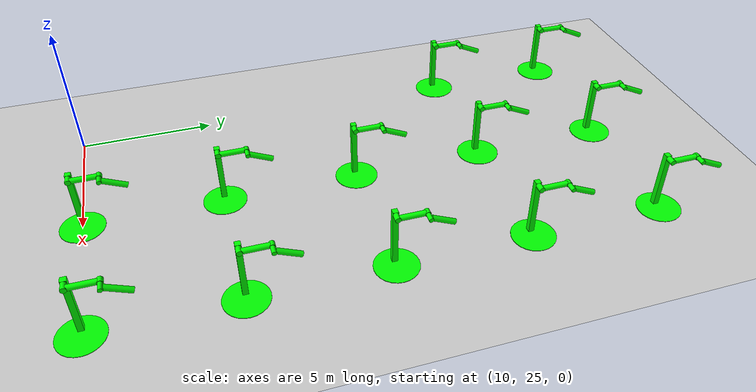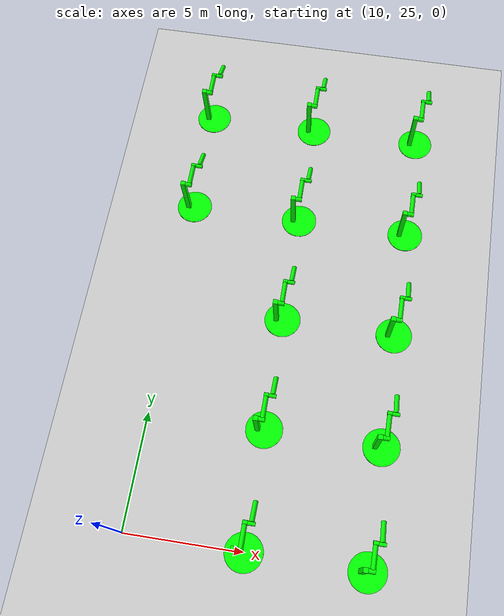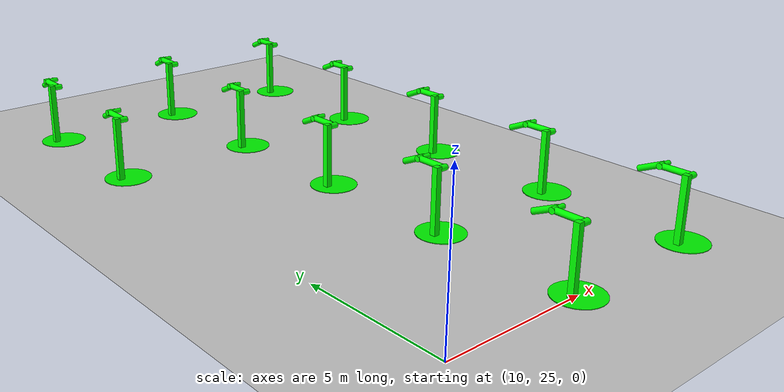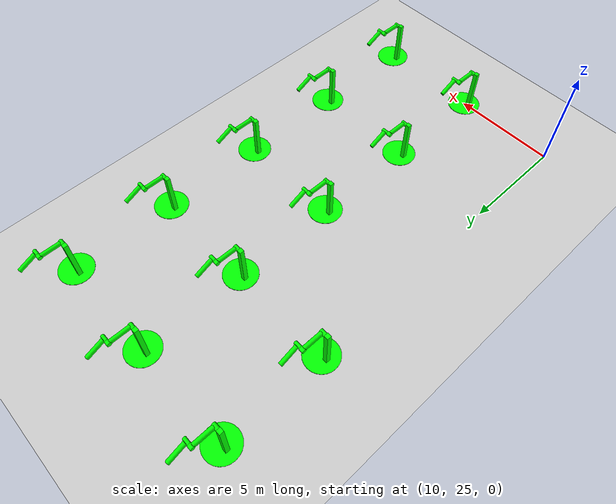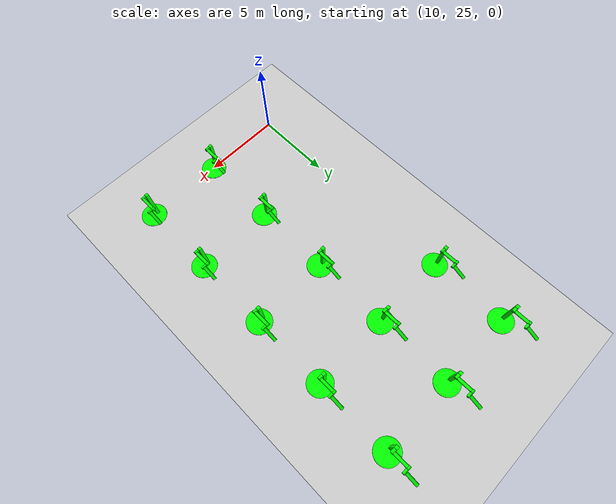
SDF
<sdf version="1.6">
 <world name="double_pendulums">
  <model name="ground_plane">
   <static>true</static>
   <link name="link">
    <collision name="collision">
     <geometry><plane><normal>0 0 1</normal><size>100 100</size></plane></geometry>
    </collision>
    <visual name="visual">
     <geometry><plane><normal>0 0 1</normal><size>100 100</size></plane></geometry>
     <material>
      <ambient>0.8 0.8 0.8 1</ambient>
      <diffuse>0.8 0.8 0.8 1</diffuse>
      <specular>0.8 0.8 0.8 1</specular>
     </material>
    </visual>
   </link>
  </model>
  <model name="dbl_pendulum_58">
   <pose>15 25 0 0 0 0</pose>
   <link name="base">
    <inertial><mass>100</mass></inertial>
    <visual name="vis_plate_on_ground">
     <pose>0 0 0.01 0 0 0</pose>
     <geometry><cylinder><radius>0.8</radius><length>0.02</length></cylinder></geometry>
     <material><ambient>0 1 0 1</ambient><diffuse>0 1 0 1</diffuse><specular>0 1 0 1</specular></material>
    </visual>
    <visual name="vis_pole">
     <pose>-0.275 0 1.1 0 0 0</pose>
     <geometry><box><size>0.2 0.2 2.2</size></box></geometry>
     <material><ambient>0 1 0 1</ambient><diffuse>0 1 0 1</diffuse><specular>0 1 0 1</specular></material>
    </visual>
    <collision name="col_plate_on_ground">
     <pose>0 0 0.01 0 0 0</pose>
     <geometry><cylinder><radius>0.8</radius><length>0.02</length></cylinder></geometry>
    </collision>
    <collision name="col_pole">
     <pose>-0.275 0 1.1 0 0 0</pose>
     <geometry><box><size>0.2 0.2 2.2</size></box></geometry>
    </collision>
   </link>
   <link name="upper_link">
    <pose>0 0 2.1 -1.5708 0 0</pose>
    <inertial><pose>0 0 0.5 0 0 0</pose></inertial>
    <visual name="vis_upper_joint">
     <pose>-0.05 0 0 0 1.5708 0</pose>
     <geometry><cylinder><radius>0.1</radius><length>0.3</length></cylinder></geometry>
     <material><ambient>0 1 0 1</ambient><diffuse>0 1 0 1</diffuse><specular>0 1 0 1</specular></material>
    </visual>
    <visual name="vis_lower_joint">
     <pose>0 0 1.0 0 1.5708 0</pose>
     <geometry><cylinder><radius>0.1</radius><length>0.2</length></cylinder></geometry>
     <material><ambient>0 1 0 1</ambient><diffuse>0 1 0 1</diffuse><specular>0 1 0 1</specular></material>
    </visual>
    <visual name="vis_cylinder">
     <pose>0 0 0.5 0 0 0</pose>
     <geometry><cylinder><radius>0.1</radius><length>0.9</length></cylinder></geometry>
     <material><ambient>0 1 0 1</ambient><diffuse>0 1 0 1</diffuse><specular>0 1 0 1</specular></material>
    </visual>
    <collision name="col_upper_joint">
     <pose>-0.05 0 0 0 1.5708 0</pose>
     <geometry><cylinder><radius>0.1</radius><length>0.3</length></cylinder></geometry>
    </collision>
    <collision name="col_lower_joint">
     <pose>0 0 1.0 0 1.5708 0</pose>
     <geometry><cylinder><radius>0.1</radius><length>0.2</length></cylinder></geometry>
    </collision>
    <collision name="col_cylinder">
     <pose>0 0 0.5 0 0 0</pose>
     <geometry><cylinder><radius>0.1</radius><length>0.9</length></cylinder></geometry>
    </collision>
   </link>
   <link name="lower_link">
    <pose>0.25 1.0 2.1 -2 0 0</pose>
    <inertial><pose>0 0 0.5 0 0 0</pose></inertial>
    <visual name="vis_lower_joint">
     <pose>0 0 0 0 1.5708 0</pose>
     <geometry><cylinder><radius>0.08</radius><length>0.3</length></cylinder></geometry>
     <material><ambient>0 1 0 1</ambient><diffuse>0 1 0 1</diffuse><specular>0 1 0 1</specular></material>
    </visual>
    <visual name="vis_cylinder">
     <pose>0 0 0.5 0 0 0</pose>
     <geometry><cylinder><radius>0.1</radius><length>0.9</length></cylinder></geometry>
     <material><ambient>0 1 0 1</ambient><diffuse>0 1 0 1</diffuse><specular>0 1 0 1</specular></material>
    </visual>
    <collision name="col_lower_joint">
     <pose>0 0 0 0 1.5708 0</pose>
     <geometry><cylinder><radius>0.08</radius><length>0.3</length></cylinder></geometry>
    </collision>
    <collision name="col_cylinder">
     <pose>0 0 0.5 0 0 0</pose>
     <geometry><cylinder><radius>0.1</radius><length>0.9</length></cylinder></geometry>
    </collision>
   </link>
   <joint name="upper_joint" type="revolute">
    <parent>base</parent>
    <child>upper_link</child>
    <axis><xyz>1.0 0 0</xyz></axis>
   </joint>
   <joint name="lower_joint" type="revolute">
    <parent>upper_link</parent>
    <child>lower_link</child>
    <axis><xyz>1.0 0 0</xyz></axis>
   </joint>
  </model>
  <model name="dbl_pendulum_59">
   <pose>20 25 0 0 0 0</pose>
   <link name="base">
    <inertial><mass>100</mass></inertial>
    <visual name="vis_plate_on_ground">
     <pose>0 0 0.01 0 0 0</pose>
     <geometry><cylinder><radius>0.8</radius><length>0.02</length></cylinder></geometry>
     <material><ambient>0 1 0 1</ambient><diffuse>0 1 0 1</diffuse><specular>0 1 0 1</specular></material>
    </visual>
    <visual name="vis_pole">
     <pose>-0.275 0 1.1 0 0 0</pose>
     <geometry><box><size>0.2 0.2 2.2</size></box></geometry>
     <material><ambient>0 1 0 1</ambient><diffuse>0 1 0 1</diffuse><specular>0 1 0 1</specular></material>
    </visual>
    <collision name="col_plate_on_ground">
     <pose>0 0 0.01 0 0 0</pose>
     <geometry><cylinder><radius>0.8</radius><length>0.02</length></cylinder></geometry>
    </collision>
    <collision name="col_pole">
     <pose>-0.275 0 1.1 0 0 0</pose>
     <geometry><box><size>0.2 0.2 2.2</size></box></geometry>
    </collision>
   </link>
   <link name="upper_link">
    <pose>0 0 2.1 -1.5708 0 0</pose>
    <inertial><pose>0 0 0.5 0 0 0</pose></inertial>
    <visual name="vis_upper_joint">
     <pose>-0.05 0 0 0 1.5708 0</pose>
     <geometry><cylinder><radius>0.1</radius><length>0.3</length></cylinder></geometry>
     <material><ambient>0 1 0 1</ambient><diffuse>0 1 0 1</diffuse><specular>0 1 0 1</specular></material>
    </visual>
    <visual name="vis_lower_joint">
     <pose>0 0 1.0 0 1.5708 0</pose>
     <geometry><cylinder><radius>0.1</radius><length>0.2</length></cylinder></geometry>
     <material><ambient>0 1 0 1</ambient><diffuse>0 1 0 1</diffuse><specular>0 1 0 1</specular></material>
    </visual>
    <visual name="vis_cylinder">
     <pose>0 0 0.5 0 0 0</pose>
     <geometry><cylinder><radius>0.1</radius><length>0.9</length></cylinder></geometry>
     <material><ambient>0 1 0 1</ambient><diffuse>0 1 0 1</diffuse><specular>0 1 0 1</specular></material>
    </visual>
    <collision name="col_upper_joint">
     <pose>-0.05 0 0 0 1.5708 0</pose>
     <geometry><cylinder><radius>0.1</radius><length>0.3</length></cylinder></geometry>
    </collision>
    <collision name="col_lower_joint">
     <pose>0 0 1.0 0 1.5708 0</pose>
     <geometry><cylinder><radius>0.1</radius><length>0.2</length></cylinder></geometry>
    </collision>
    <collision name="col_cylinder">
     <pose>0 0 0.5 0 0 0</pose>
     <geometry><cylinder><radius>0.1</radius><length>0.9</length></cylinder></geometry>
    </collision>
   </link>
   <link name="lower_link">
    <pose>0.25 1.0 2.1 -2 0 0</pose>
    <inertial><pose>0 0 0.5 0 0 0</pose></inertial>
    <visual name="vis_lower_joint">
     <pose>0 0 0 0 1.5708 0</pose>
     <geometry><cylinder><radius>0.08</radius><length>0.3</length></cylinder></geometry>
     <material><ambient>0 1 0 1</ambient><diffuse>0 1 0 1</diffuse><specular>0 1 0 1</specular></material>
    </visual>
    <visual name="vis_cylinder">
     <pose>0 0 0.5 0 0 0</pose>
     <geometry><cylinder><radius>0.1</radius><length>0.9</length></cylinder></geometry>
     <material><ambient>0 1 0 1</ambient><diffuse>0 1 0 1</diffuse><specular>0 1 0 1</specular></material>
    </visual>
    <collision name="col_lower_joint">
     <pose>0 0 0 0 1.5708 0</pose>
     <geometry><cylinder><radius>0.08</radius><length>0.3</length></cylinder></geometry>
    </collision>
    <collision name="col_cylinder">
     <pose>0 0 0.5 0 0 0</pose>
     <geometry><cylinder><radius>0.1</radius><length>0.9</length></cylinder></geometry>
    </collision>
   </link>
   <joint name="upper_joint" type="revolute">
    <parent>base</parent>
    <child>upper_link</child>
    <axis><xyz>1.0 0 0</xyz></axis>
   </joint>
   <joint name="lower_joint" type="revolute">
    <parent>upper_link</parent>
    <child>lower_link</child>
    <axis><xyz>1.0 0 0</xyz></axis>
   </joint>
  </model>
  <model name="dbl_pendulum_68">
   <pose>15 30 0 0 0 0</pose>
   <link name="base">
    <inertial><mass>100</mass></inertial>
    <visual name="vis_plate_on_ground">
     <pose>0 0 0.01 0 0 0</pose>
     <geometry><cylinder><radius>0.8</radius><length>0.02</length></cylinder></geometry>
     <material><ambient>0 1 0 1</ambient><diffuse>0 1 0 1</diffuse><specular>0 1 0 1</specular></material>
    </visual>
    <visual name="vis_pole">
     <pose>-0.275 0 1.1 0 0 0</pose>
     <geometry><box><size>0.2 0.2 2.2</size></box></geometry>
     <material><ambient>0 1 0 1</ambient><diffuse>0 1 0 1</diffuse><specular>0 1 0 1</specular></material>
    </visual>
    <collision name="col_plate_on_ground">
     <pose>0 0 0.01 0 0 0</pose>
     <geometry><cylinder><radius>0.8</radius><length>0.02</length></cylinder></geometry>
    </collision>
    <collision name="col_pole">
     <pose>-0.275 0 1.1 0 0 0</pose>
     <geometry><box><size>0.2 0.2 2.2</size></box></geometry>
    </collision>
   </link>
   <link name="upper_link">
    <pose>0 0 2.1 -1.5708 0 0</pose>
    <inertial><pose>0 0 0.5 0 0 0</pose></inertial>
    <visual name="vis_upper_joint">
     <pose>-0.05 0 0 0 1.5708 0</pose>
     <geometry><cylinder><radius>0.1</radius><length>0.3</length></cylinder></geometry>
     <material><ambient>0 1 0 1</ambient><diffuse>0 1 0 1</diffuse><specular>0 1 0 1</specular></material>
    </visual>
    <visual name="vis_lower_joint">
     <pose>0 0 1.0 0 1.5708 0</pose>
     <geometry><cylinder><radius>0.1</radius><length>0.2</length></cylinder></geometry>
     <material><ambient>0 1 0 1</ambient><diffuse>0 1 0 1</diffuse><specular>0 1 0 1</specular></material>
    </visual>
    <visual name="vis_cylinder">
     <pose>0 0 0.5 0 0 0</pose>
     <geometry><cylinder><radius>0.1</radius><length>0.9</length></cylinder></geometry>
     <material><ambient>0 1 0 1</ambient><diffuse>0 1 0 1</diffuse><specular>0 1 0 1</specular></material>
    </visual>
    <collision name="col_upper_joint">
     <pose>-0.05 0 0 0 1.5708 0</pose>
     <geometry><cylinder><radius>0.1</radius><length>0.3</length></cylinder></geometry>
    </collision>
    <collision name="col_lower_joint">
     <pose>0 0 1.0 0 1.5708 0</pose>
     <geometry><cylinder><radius>0.1</radius><length>0.2</length></cylinder></geometry>
    </collision>
    <collision name="col_cylinder">
     <pose>0 0 0.5 0 0 0</pose>
     <geometry><cylinder><radius>0.1</radius><length>0.9</length></cylinder></geometry>
    </collision>
   </link>
   <link name="lower_link">
    <pose>0.25 1.0 2.1 -2 0 0</pose>
    <inertial><pose>0 0 0.5 0 0 0</pose></inertial>
    <visual name="vis_lower_joint">
     <pose>0 0 0 0 1.5708 0</pose>
     <geometry><cylinder><radius>0.08</radius><length>0.3</length></cylinder></geometry>
     <material><ambient>0 1 0 1</ambient><diffuse>0 1 0 1</diffuse><specular>0 1 0 1</specular></material>
    </visual>
    <visual name="vis_cylinder">
     <pose>0 0 0.5 0 0 0</pose>
     <geometry><cylinder><radius>0.1</radius><length>0.9</length></cylinder></geometry>
     <material><ambient>0 1 0 1</ambient><diffuse>0 1 0 1</diffuse><specular>0 1 0 1</specular></material>
    </visual>
    <collision name="col_lower_joint">
     <pose>0 0 0 0 1.5708 0</pose>
     <geometry><cylinder><radius>0.08</radius><length>0.3</length></cylinder></geometry>
    </collision>
    <collision name="col_cylinder">
     <pose>0 0 0.5 0 0 0</pose>
     <geometry><cylinder><radius>0.1</radius><length>0.9</length></cylinder></geometry>
    </collision>
   </link>
   <joint name="upper_joint" type="revolute">
    <parent>base</parent>
    <child>upper_link</child>
    <axis><xyz>1.0 0 0</xyz></axis>
   </joint>
   <joint name="lower_joint" type="revolute">
    <parent>upper_link</parent>
    <child>lower_link</child>
    <axis><xyz>1.0 0 0</xyz></axis>
   </joint>
  </model>
  <model name="dbl_pendulum_69">
   <pose>20 30 0 0 0 0</pose>
   <link name="base">
    <inertial><mass>100</mass></inertial>
    <visual name="vis_plate_on_ground">
     <pose>0 0 0.01 0 0 0</pose>
     <geometry><cylinder><radius>0.8</radius><length>0.02</length></cylinder></geometry>
     <material><ambient>0 1 0 1</ambient><diffuse>0 1 0 1</diffuse><specular>0 1 0 1</specular></material>
    </visual>
    <visual name="vis_pole">
     <pose>-0.275 0 1.1 0 0 0</pose>
     <geometry><box><size>0.2 0.2 2.2</size></box></geometry>
     <material><ambient>0 1 0 1</ambient><diffuse>0 1 0 1</diffuse><specular>0 1 0 1</specular></material>
    </visual>
    <collision name="col_plate_on_ground">
     <pose>0 0 0.01 0 0 0</pose>
     <geometry><cylinder><radius>0.8</radius><length>0.02</length></cylinder></geometry>
    </collision>
    <collision name="col_pole">
     <pose>-0.275 0 1.1 0 0 0</pose>
     <geometry><box><size>0.2 0.2 2.2</size></box></geometry>
    </collision>
   </link>
   <link name="upper_link">
    <pose>0 0 2.1 -1.5708 0 0</pose>
    <inertial><pose>0 0 0.5 0 0 0</pose></inertial>
    <visual name="vis_upper_joint">
     <pose>-0.05 0 0 0 1.5708 0</pose>
     <geometry><cylinder><radius>0.1</radius><length>0.3</length></cylinder></geometry>
     <material><ambient>0 1 0 1</ambient><diffuse>0 1 0 1</diffuse><specular>0 1 0 1</specular></material>
    </visual>
    <visual name="vis_lower_joint">
     <pose>0 0 1.0 0 1.5708 0</pose>
     <geometry><cylinder><radius>0.1</radius><length>0.2</length></cylinder></geometry>
     <material><ambient>0 1 0 1</ambient><diffuse>0 1 0 1</diffuse><specular>0 1 0 1</specular></material>
    </visual>
    <visual name="vis_cylinder">
     <pose>0 0 0.5 0 0 0</pose>
     <geometry><cylinder><radius>0.1</radius><length>0.9</length></cylinder></geometry>
     <material><ambient>0 1 0 1</ambient><diffuse>0 1 0 1</diffuse><specular>0 1 0 1</specular></material>
    </visual>
    <collision name="col_upper_joint">
     <pose>-0.05 0 0 0 1.5708 0</pose>
     <geometry><cylinder><radius>0.1</radius><length>0.3</length></cylinder></geometry>
    </collision>
    <collision name="col_lower_joint">
     <pose>0 0 1.0 0 1.5708 0</pose>
     <geometry><cylinder><radius>0.1</radius><length>0.2</length></cylinder></geometry>
    </collision>
    <collision name="col_cylinder">
     <pose>0 0 0.5 0 0 0</pose>
     <geometry><cylinder><radius>0.1</radius><length>0.9</length></cylinder></geometry>
    </collision>
   </link>
   <link name="lower_link">
    <pose>0.25 1.0 2.1 -2 0 0</pose>
    <inertial><pose>0 0 0.5 0 0 0</pose></inertial>
    <visual name="vis_lower_joint">
     <pose>0 0 0 0 1.5708 0</pose>
     <geometry><cylinder><radius>0.08</radius><length>0.3</length></cylinder></geometry>
     <material><ambient>0 1 0 1</ambient><diffuse>0 1 0 1</diffuse><specular>0 1 0 1</specular></material>
    </visual>
    <visual name="vis_cylinder">
     <pose>0 0 0.5 0 0 0</pose>
     <geometry><cylinder><radius>0.1</radius><length>0.9</length></cylinder></geometry>
     <material><ambient>0 1 0 1</ambient><diffuse>0 1 0 1</diffuse><specular>0 1 0 1</specular></material>
    </visual>
    <collision name="col_lower_joint">
     <pose>0 0 0 0 1.5708 0</pose>
     <geometry><cylinder><radius>0.08</radius><length>0.3</length></cylinder></geometry>
    </collision>
    <collision name="col_cylinder">
     <pose>0 0 0.5 0 0 0</pose>
     <geometry><cylinder><radius>0.1</radius><length>0.9</length></cylinder></geometry>
    </collision>
   </link>
   <joint name="upper_joint" type="revolute">
    <parent>base</parent>
    <child>upper_link</child>
    <axis><xyz>1.0 0 0</xyz></axis>
   </joint>
   <joint name="lower_joint" type="revolute">
    <parent>upper_link</parent>
    <child>lower_link</child>
    <axis><xyz>1.0 0 0</xyz></axis>
   </joint>
  </model>
  <model name="dbl_pendulum_78">
   <pose>15 35 0 0 0 0</pose>
   <link name="base">
    <inertial><mass>100</mass></inertial>
    <visual name="vis_plate_on_ground">
     <pose>0 0 0.01 0 0 0</pose>
     <geometry><cylinder><radius>0.8</radius><length>0.02</length></cylinder></geometry>
     <material><ambient>0 1 0 1</ambient><diffuse>0 1 0 1</diffuse><specular>0 1 0 1</specular></material>
    </visual>
    <visual name="vis_pole">
     <pose>-0.275 0 1.1 0 0 0</pose>
     <geometry><box><size>0.2 0.2 2.2</size></box></geometry>
     <material><ambient>0 1 0 1</ambient><diffuse>0 1 0 1</diffuse><specular>0 1 0 1</specular></material>
    </visual>
    <collision name="col_plate_on_ground">
     <pose>0 0 0.01 0 0 0</pose>
     <geometry><cylinder><radius>0.8</radius><length>0.02</length></cylinder></geometry>
    </collision>
    <collision name="col_pole">
     <pose>-0.275 0 1.1 0 0 0</pose>
     <geometry><box><size>0.2 0.2 2.2</size></box></geometry>
    </collision>
   </link>
   <link name="upper_link">
    <pose>0 0 2.1 -1.5708 0 0</pose>
    <inertial><pose>0 0 0.5 0 0 0</pose></inertial>
    <visual name="vis_upper_joint">
     <pose>-0.05 0 0 0 1.5708 0</pose>
     <geometry><cylinder><radius>0.1</radius><length>0.3</length></cylinder></geometry>
     <material><ambient>0 1 0 1</ambient><diffuse>0 1 0 1</diffuse><specular>0 1 0 1</specular></material>
    </visual>
    <visual name="vis_lower_joint">
     <pose>0 0 1.0 0 1.5708 0</pose>
     <geometry><cylinder><radius>0.1</radius><length>0.2</length></cylinder></geometry>
     <material><ambient>0 1 0 1</ambient><diffuse>0 1 0 1</diffuse><specular>0 1 0 1</specular></material>
    </visual>
    <visual name="vis_cylinder">
     <pose>0 0 0.5 0 0 0</pose>
     <geometry><cylinder><radius>0.1</radius><length>0.9</length></cylinder></geometry>
     <material><ambient>0 1 0 1</ambient><diffuse>0 1 0 1</diffuse><specular>0 1 0 1</specular></material>
    </visual>
    <collision name="col_upper_joint">
     <pose>-0.05 0 0 0 1.5708 0</pose>
     <geometry><cylinder><radius>0.1</radius><length>0.3</length></cylinder></geometry>
    </collision>
    <collision name="col_lower_joint">
     <pose>0 0 1.0 0 1.5708 0</pose>
     <geometry><cylinder><radius>0.1</radius><length>0.2</length></cylinder></geometry>
    </collision>
    <collision name="col_cylinder">
     <pose>0 0 0.5 0 0 0</pose>
     <geometry><cylinder><radius>0.1</radius><length>0.9</length></cylinder></geometry>
    </collision>
   </link>
   <link name="lower_link">
    <pose>0.25 1.0 2.1 -2 0 0</pose>
    <inertial><pose>0 0 0.5 0 0 0</pose></inertial>
    <visual name="vis_lower_joint">
     <pose>0 0 0 0 1.5708 0</pose>
     <geometry><cylinder><radius>0.08</radius><length>0.3</length></cylinder></geometry>
     <material><ambient>0 1 0 1</ambient><diffuse>0 1 0 1</diffuse><specular>0 1 0 1</specular></material>
    </visual>
    <visual name="vis_cylinder">
     <pose>0 0 0.5 0 0 0</pose>
     <geometry><cylinder><radius>0.1</radius><length>0.9</length></cylinder></geometry>
     <material><ambient>0 1 0 1</ambient><diffuse>0 1 0 1</diffuse><specular>0 1 0 1</specular></material>
    </visual>
    <collision name="col_lower_joint">
     <pose>0 0 0 0 1.5708 0</pose>
     <geometry><cylinder><radius>0.08</radius><length>0.3</length></cylinder></geometry>
    </collision>
    <collision name="col_cylinder">
     <pose>0 0 0.5 0 0 0</pose>
     <geometry><cylinder><radius>0.1</radius><length>0.9</length></cylinder></geometry>
    </collision>
   </link>
   <joint name="upper_joint" type="revolute">
    <parent>base</parent>
    <child>upper_link</child>
    <axis><xyz>1.0 0 0</xyz></axis>
   </joint>
   <joint name="lower_joint" type="revolute">
    <parent>upper_link</parent>
    <child>lower_link</child>
    <axis><xyz>1.0 0 0</xyz></axis>
   </joint>
  </model>
  <model name="dbl_pendulum_79">
   <pose>20 35 0 0 0 0</pose>
   <link name="base">
    <inertial><mass>100</mass></inertial>
    <visual name="vis_plate_on_ground">
     <pose>0 0 0.01 0 0 0</pose>
     <geometry><cylinder><radius>0.8</radius><length>0.02</length></cylinder></geometry>
     <material><ambient>0 1 0 1</ambient><diffuse>0 1 0 1</diffuse><specular>0 1 0 1</specular></material>
    </visual>
    <visual name="vis_pole">
     <pose>-0.275 0 1.1 0 0 0</pose>
     <geometry><box><size>0.2 0.2 2.2</size></box></geometry>
     <material><ambient>0 1 0 1</ambient><diffuse>0 1 0 1</diffuse><specular>0 1 0 1</specular></material>
    </visual>
    <collision name="col_plate_on_ground">
     <pose>0 0 0.01 0 0 0</pose>
     <geometry><cylinder><radius>0.8</radius><length>0.02</length></cylinder></geometry>
    </collision>
    <collision name="col_pole">
     <pose>-0.275 0 1.1 0 0 0</pose>
     <geometry><box><size>0.2 0.2 2.2</size></box></geometry>
    </collision>
   </link>
   <link name="upper_link">
    <pose>0 0 2.1 -1.5708 0 0</pose>
    <inertial><pose>0 0 0.5 0 0 0</pose></inertial>
    <visual name="vis_upper_joint">
     <pose>-0.05 0 0 0 1.5708 0</pose>
     <geometry><cylinder><radius>0.1</radius><length>0.3</length></cylinder></geometry>
     <material><ambient>0 1 0 1</ambient><diffuse>0 1 0 1</diffuse><specular>0 1 0 1</specular></material>
    </visual>
    <visual name="vis_lower_joint">
     <pose>0 0 1.0 0 1.5708 0</pose>
     <geometry><cylinder><radius>0.1</radius><length>0.2</length></cylinder></geometry>
     <material><ambient>0 1 0 1</ambient><diffuse>0 1 0 1</diffuse><specular>0 1 0 1</specular></material>
    </visual>
    <visual name="vis_cylinder">
     <pose>0 0 0.5 0 0 0</pose>
     <geometry><cylinder><radius>0.1</radius><length>0.9</length></cylinder></geometry>
     <material><ambient>0 1 0 1</ambient><diffuse>0 1 0 1</diffuse><specular>0 1 0 1</specular></material>
    </visual>
    <collision name="col_upper_joint">
     <pose>-0.05 0 0 0 1.5708 0</pose>
     <geometry><cylinder><radius>0.1</radius><length>0.3</length></cylinder></geometry>
    </collision>
    <collision name="col_lower_joint">
     <pose>0 0 1.0 0 1.5708 0</pose>
     <geometry><cylinder><radius>0.1</radius><length>0.2</length></cylinder></geometry>
    </collision>
    <collision name="col_cylinder">
     <pose>0 0 0.5 0 0 0</pose>
     <geometry><cylinder><radius>0.1</radius><length>0.9</length></cylinder></geometry>
    </collision>
   </link>
   <link name="lower_link">
    <pose>0.25 1.0 2.1 -2 0 0</pose>
    <inertial><pose>0 0 0.5 0 0 0</pose></inertial>
    <visual name="vis_lower_joint">
     <pose>0 0 0 0 1.5708 0</pose>
     <geometry><cylinder><radius>0.08</radius><length>0.3</length></cylinder></geometry>
     <material><ambient>0 1 0 1</ambient><diffuse>0 1 0 1</diffuse><specular>0 1 0 1</specular></material>
    </visual>
    <visual name="vis_cylinder">
     <pose>0 0 0.5 0 0 0</pose>
     <geometry><cylinder><radius>0.1</radius><length>0.9</length></cylinder></geometry>
     <material><ambient>0 1 0 1</ambient><diffuse>0 1 0 1</diffuse><specular>0 1 0 1</specular></material>
    </visual>
    <collision name="col_lower_joint">
     <pose>0 0 0 0 1.5708 0</pose>
     <geometry><cylinder><radius>0.08</radius><length>0.3</length></cylinder></geometry>
    </collision>
    <collision name="col_cylinder">
     <pose>0 0 0.5 0 0 0</pose>
     <geometry><cylinder><radius>0.1</radius><length>0.9</length></cylinder></geometry>
    </collision>
   </link>
   <joint name="upper_joint" type="revolute">
    <parent>base</parent>
    <child>upper_link</child>
    <axis><xyz>1.0 0 0</xyz></axis>
   </joint>
   <joint name="lower_joint" type="revolute">
    <parent>upper_link</parent>
    <child>lower_link</child>
    <axis><xyz>1.0 0 0</xyz></axis>
   </joint>
  </model>
  <model name="dbl_pendulum_87">
   <pose>10 40 0 0 0 0</pose>
   <link name="base">
    <inertial><mass>100</mass></inertial>
    <visual name="vis_plate_on_ground">
     <pose>0 0 0.01 0 0 0</pose>
     <geometry><cylinder><radius>0.8</radius><length>0.02</length></cylinder></geometry>
     <material><ambient>0 1 0 1</ambient><diffuse>0 1 0 1</diffuse><specular>0 1 0 1</specular></material>
    </visual>
    <visual name="vis_pole">
     <pose>-0.275 0 1.1 0 0 0</pose>
     <geometry><box><size>0.2 0.2 2.2</size></box></geometry>
     <material><ambient>0 1 0 1</ambient><diffuse>0 1 0 1</diffuse><specular>0 1 0 1</specular></material>
    </visual>
    <collision name="col_plate_on_ground">
     <pose>0 0 0.01 0 0 0</pose>
     <geometry><cylinder><radius>0.8</radius><length>0.02</length></cylinder></geometry>
    </collision>
    <collision name="col_pole">
     <pose>-0.275 0 1.1 0 0 0</pose>
     <geometry><box><size>0.2 0.2 2.2</size></box></geometry>
    </collision>
   </link>
   <link name="upper_link">
    <pose>0 0 2.1 -1.5708 0 0</pose>
    <inertial><pose>0 0 0.5 0 0 0</pose></inertial>
    <visual name="vis_upper_joint">
     <pose>-0.05 0 0 0 1.5708 0</pose>
     <geometry><cylinder><radius>0.1</radius><length>0.3</length></cylinder></geometry>
     <material><ambient>0 1 0 1</ambient><diffuse>0 1 0 1</diffuse><specular>0 1 0 1</specular></material>
    </visual>
    <visual name="vis_lower_joint">
     <pose>0 0 1.0 0 1.5708 0</pose>
     <geometry><cylinder><radius>0.1</radius><length>0.2</length></cylinder></geometry>
     <material><ambient>0 1 0 1</ambient><diffuse>0 1 0 1</diffuse><specular>0 1 0 1</specular></material>
    </visual>
    <visual name="vis_cylinder">
     <pose>0 0 0.5 0 0 0</pose>
     <geometry><cylinder><radius>0.1</radius><length>0.9</length></cylinder></geometry>
     <material><ambient>0 1 0 1</ambient><diffuse>0 1 0 1</diffuse><specular>0 1 0 1</specular></material>
    </visual>
    <collision name="col_upper_joint">
     <pose>-0.05 0 0 0 1.5708 0</pose>
     <geometry><cylinder><radius>0.1</radius><length>0.3</length></cylinder></geometry>
    </collision>
    <collision name="col_lower_joint">
     <pose>0 0 1.0 0 1.5708 0</pose>
     <geometry><cylinder><radius>0.1</radius><length>0.2</length></cylinder></geometry>
    </collision>
    <collision name="col_cylinder">
     <pose>0 0 0.5 0 0 0</pose>
     <geometry><cylinder><radius>0.1</radius><length>0.9</length></cylinder></geometry>
    </collision>
   </link>
   <link name="lower_link">
    <pose>0.25 1.0 2.1 -2 0 0</pose>
    <inertial><pose>0 0 0.5 0 0 0</pose></inertial>
    <visual name="vis_lower_joint">
     <pose>0 0 0 0 1.5708 0</pose>
     <geometry><cylinder><radius>0.08</radius><length>0.3</length></cylinder></geometry>
     <material><ambient>0 1 0 1</ambient><diffuse>0 1 0 1</diffuse><specular>0 1 0 1</specular></material>
    </visual>
    <visual name="vis_cylinder">
     <pose>0 0 0.5 0 0 0</pose>
     <geometry><cylinder><radius>0.1</radius><length>0.9</length></cylinder></geometry>
     <material><ambient>0 1 0 1</ambient><diffuse>0 1 0 1</diffuse><specular>0 1 0 1</specular></material>
    </visual>
    <collision name="col_lower_joint">
     <pose>0 0 0 0 1.5708 0</pose>
     <geometry><cylinder><radius>0.08</radius><length>0.3</length></cylinder></geometry>
    </collision>
    <collision name="col_cylinder">
     <pose>0 0 0.5 0 0 0</pose>
     <geometry><cylinder><radius>0.1</radius><length>0.9</length></cylinder></geometry>
    </collision>
   </link>
   <joint name="upper_joint" type="revolute">
    <parent>base</parent>
    <child>upper_link</child>
    <axis><xyz>1.0 0 0</xyz></axis>
   </joint>
   <joint name="lower_joint" type="revolute">
    <parent>upper_link</parent>
    <child>lower_link</child>
    <axis><xyz>1.0 0 0</xyz></axis>
   </joint>
  </model>
  <model name="dbl_pendulum_88">
   <pose>15 40 0 0 0 0</pose>
   <link name="base">
    <inertial><mass>100</mass></inertial>
    <visual name="vis_plate_on_ground">
     <pose>0 0 0.01 0 0 0</pose>
     <geometry><cylinder><radius>0.8</radius><length>0.02</length></cylinder></geometry>
     <material><ambient>0 1 0 1</ambient><diffuse>0 1 0 1</diffuse><specular>0 1 0 1</specular></material>
    </visual>
    <visual name="vis_pole">
     <pose>-0.275 0 1.1 0 0 0</pose>
     <geometry><box><size>0.2 0.2 2.2</size></box></geometry>
     <material><ambient>0 1 0 1</ambient><diffuse>0 1 0 1</diffuse><specular>0 1 0 1</specular></material>
    </visual>
    <collision name="col_plate_on_ground">
     <pose>0 0 0.01 0 0 0</pose>
     <geometry><cylinder><radius>0.8</radius><length>0.02</length></cylinder></geometry>
    </collision>
    <collision name="col_pole">
     <pose>-0.275 0 1.1 0 0 0</pose>
     <geometry><box><size>0.2 0.2 2.2</size></box></geometry>
    </collision>
   </link>
   <link name="upper_link">
    <pose>0 0 2.1 -1.5708 0 0</pose>
    <inertial><pose>0 0 0.5 0 0 0</pose></inertial>
    <visual name="vis_upper_joint">
     <pose>-0.05 0 0 0 1.5708 0</pose>
     <geometry><cylinder><radius>0.1</radius><length>0.3</length></cylinder></geometry>
     <material><ambient>0 1 0 1</ambient><diffuse>0 1 0 1</diffuse><specular>0 1 0 1</specular></material>
    </visual>
    <visual name="vis_lower_joint">
     <pose>0 0 1.0 0 1.5708 0</pose>
     <geometry><cylinder><radius>0.1</radius><length>0.2</length></cylinder></geometry>
     <material><ambient>0 1 0 1</ambient><diffuse>0 1 0 1</diffuse><specular>0 1 0 1</specular></material>
    </visual>
    <visual name="vis_cylinder">
     <pose>0 0 0.5 0 0 0</pose>
     <geometry><cylinder><radius>0.1</radius><length>0.9</length></cylinder></geometry>
     <material><ambient>0 1 0 1</ambient><diffuse>0 1 0 1</diffuse><specular>0 1 0 1</specular></material>
    </visual>
    <collision name="col_upper_joint">
     <pose>-0.05 0 0 0 1.5708 0</pose>
     <geometry><cylinder><radius>0.1</radius><length>0.3</length></cylinder></geometry>
    </collision>
    <collision name="col_lower_joint">
     <pose>0 0 1.0 0 1.5708 0</pose>
     <geometry><cylinder><radius>0.1</radius><length>0.2</length></cylinder></geometry>
    </collision>
    <collision name="col_cylinder">
     <pose>0 0 0.5 0 0 0</pose>
     <geometry><cylinder><radius>0.1</radius><length>0.9</length></cylinder></geometry>
    </collision>
   </link>
   <link name="lower_link">
    <pose>0.25 1.0 2.1 -2 0 0</pose>
    <inertial><pose>0 0 0.5 0 0 0</pose></inertial>
    <visual name="vis_lower_joint">
     <pose>0 0 0 0 1.5708 0</pose>
     <geometry><cylinder><radius>0.08</radius><length>0.3</length></cylinder></geometry>
     <material><ambient>0 1 0 1</ambient><diffuse>0 1 0 1</diffuse><specular>0 1 0 1</specular></material>
    </visual>
    <visual name="vis_cylinder">
     <pose>0 0 0.5 0 0 0</pose>
     <geometry><cylinder><radius>0.1</radius><length>0.9</length></cylinder></geometry>
     <material><ambient>0 1 0 1</ambient><diffuse>0 1 0 1</diffuse><specular>0 1 0 1</specular></material>
    </visual>
    <collision name="col_lower_joint">
     <pose>0 0 0 0 1.5708 0</pose>
     <geometry><cylinder><radius>0.08</radius><length>0.3</length></cylinder></geometry>
    </collision>
    <collision name="col_cylinder">
     <pose>0 0 0.5 0 0 0</pose>
     <geometry><cylinder><radius>0.1</radius><length>0.9</length></cylinder></geometry>
    </collision>
   </link>
   <joint name="upper_joint" type="revolute">
    <parent>base</parent>
    <child>upper_link</child>
    <axis><xyz>1.0 0 0</xyz></axis>
   </joint>
   <joint name="lower_joint" type="revolute">
    <parent>upper_link</parent>
    <child>lower_link</child>
    <axis><xyz>1.0 0 0</xyz></axis>
   </joint>
  </model>
  <model name="dbl_pendulum_89">
   <pose>20 40 0 0 0 0</pose>
   <link name="base">
    <inertial><mass>100</mass></inertial>
    <visual name="vis_plate_on_ground">
     <pose>0 0 0.01 0 0 0</pose>
     <geometry><cylinder><radius>0.8</radius><length>0.02</length></cylinder></geometry>
     <material><ambient>0 1 0 1</ambient><diffuse>0 1 0 1</diffuse><specular>0 1 0 1</specular></material>
    </visual>
    <visual name="vis_pole">
     <pose>-0.275 0 1.1 0 0 0</pose>
     <geometry><box><size>0.2 0.2 2.2</size></box></geometry>
     <material><ambient>0 1 0 1</ambient><diffuse>0 1 0 1</diffuse><specular>0 1 0 1</specular></material>
    </visual>
    <collision name="col_plate_on_ground">
     <pose>0 0 0.01 0 0 0</pose>
     <geometry><cylinder><radius>0.8</radius><length>0.02</length></cylinder></geometry>
    </collision>
    <collision name="col_pole">
     <pose>-0.275 0 1.1 0 0 0</pose>
     <geometry><box><size>0.2 0.2 2.2</size></box></geometry>
    </collision>
   </link>
   <link name="upper_link">
    <pose>0 0 2.1 -1.5708 0 0</pose>
    <inertial><pose>0 0 0.5 0 0 0</pose></inertial>
    <visual name="vis_upper_joint">
     <pose>-0.05 0 0 0 1.5708 0</pose>
     <geometry><cylinder><radius>0.1</radius><length>0.3</length></cylinder></geometry>
     <material><ambient>0 1 0 1</ambient><diffuse>0 1 0 1</diffuse><specular>0 1 0 1</specular></material>
    </visual>
    <visual name="vis_lower_joint">
     <pose>0 0 1.0 0 1.5708 0</pose>
     <geometry><cylinder><radius>0.1</radius><length>0.2</length></cylinder></geometry>
     <material><ambient>0 1 0 1</ambient><diffuse>0 1 0 1</diffuse><specular>0 1 0 1</specular></material>
    </visual>
    <visual name="vis_cylinder">
     <pose>0 0 0.5 0 0 0</pose>
     <geometry><cylinder><radius>0.1</radius><length>0.9</length></cylinder></geometry>
     <material><ambient>0 1 0 1</ambient><diffuse>0 1 0 1</diffuse><specular>0 1 0 1</specular></material>
    </visual>
    <collision name="col_upper_joint">
     <pose>-0.05 0 0 0 1.5708 0</pose>
     <geometry><cylinder><radius>0.1</radius><length>0.3</length></cylinder></geometry>
    </collision>
    <collision name="col_lower_joint">
     <pose>0 0 1.0 0 1.5708 0</pose>
     <geometry><cylinder><radius>0.1</radius><length>0.2</length></cylinder></geometry>
    </collision>
    <collision name="col_cylinder">
     <pose>0 0 0.5 0 0 0</pose>
     <geometry><cylinder><radius>0.1</radius><length>0.9</length></cylinder></geometry>
    </collision>
   </link>
   <link name="lower_link">
    <pose>0.25 1.0 2.1 -2 0 0</pose>
    <inertial><pose>0 0 0.5 0 0 0</pose></inertial>
    <visual name="vis_lower_joint">
     <pose>0 0 0 0 1.5708 0</pose>
     <geometry><cylinder><radius>0.08</radius><length>0.3</length></cylinder></geometry>
     <material><ambient>0 1 0 1</ambient><diffuse>0 1 0 1</diffuse><specular>0 1 0 1</specular></material>
    </visual>
    <visual name="vis_cylinder">
     <pose>0 0 0.5 0 0 0</pose>
     <geometry><cylinder><radius>0.1</radius><length>0.9</length></cylinder></geometry>
     <material><ambient>0 1 0 1</ambient><diffuse>0 1 0 1</diffuse><specular>0 1 0 1</specular></material>
    </visual>
    <collision name="col_lower_joint">
     <pose>0 0 0 0 1.5708 0</pose>
     <geometry><cylinder><radius>0.08</radius><length>0.3</length></cylinder></geometry>
    </collision>
    <collision name="col_cylinder">
     <pose>0 0 0.5 0 0 0</pose>
     <geometry><cylinder><radius>0.1</radius><length>0.9</length></cylinder></geometry>
    </collision>
   </link>
   <joint name="upper_joint" type="revolute">
    <parent>base</parent>
    <child>upper_link</child>
    <axis><xyz>1.0 0 0</xyz></axis>
   </joint>
   <joint name="lower_joint" type="revolute">
    <parent>upper_link</parent>
    <child>lower_link</child>
    <axis><xyz>1.0 0 0</xyz></axis>
   </joint>
  </model>
  <model name="dbl_pendulum_97">
   <pose>10 45 0 0 0 0</pose>
   <link name="base">
    <inertial><mass>100</mass></inertial>
    <visual name="vis_plate_on_ground">
     <pose>0 0 0.01 0 0 0</pose>
     <geometry><cylinder><radius>0.8</radius><length>0.02</length></cylinder></geometry>
     <material><ambient>0 1 0 1</ambient><diffuse>0 1 0 1</diffuse><specular>0 1 0 1</specular></material>
    </visual>
    <visual name="vis_pole">
     <pose>-0.275 0 1.1 0 0 0</pose>
     <geometry><box><size>0.2 0.2 2.2</size></box></geometry>
     <material><ambient>0 1 0 1</ambient><diffuse>0 1 0 1</diffuse><specular>0 1 0 1</specular></material>
    </visual>
    <collision name="col_plate_on_ground">
     <pose>0 0 0.01 0 0 0</pose>
     <geometry><cylinder><radius>0.8</radius><length>0.02</length></cylinder></geometry>
    </collision>
    <collision name="col_pole">
     <pose>-0.275 0 1.1 0 0 0</pose>
     <geometry><box><size>0.2 0.2 2.2</size></box></geometry>
    </collision>
   </link>
   <link name="upper_link">
    <pose>0 0 2.1 -1.5708 0 0</pose>
    <inertial><pose>0 0 0.5 0 0 0</pose></inertial>
    <visual name="vis_upper_joint">
     <pose>-0.05 0 0 0 1.5708 0</pose>
     <geometry><cylinder><radius>0.1</radius><length>0.3</length></cylinder></geometry>
     <material><ambient>0 1 0 1</ambient><diffuse>0 1 0 1</diffuse><specular>0 1 0 1</specular></material>
    </visual>
    <visual name="vis_lower_joint">
     <pose>0 0 1.0 0 1.5708 0</pose>
     <geometry><cylinder><radius>0.1</radius><length>0.2</length></cylinder></geometry>
     <material><ambient>0 1 0 1</ambient><diffuse>0 1 0 1</diffuse><specular>0 1 0 1</specular></material>
    </visual>
    <visual name="vis_cylinder">
     <pose>0 0 0.5 0 0 0</pose>
     <geometry><cylinder><radius>0.1</radius><length>0.9</length></cylinder></geometry>
     <material><ambient>0 1 0 1</ambient><diffuse>0 1 0 1</diffuse><specular>0 1 0 1</specular></material>
    </visual>
    <collision name="col_upper_joint">
     <pose>-0.05 0 0 0 1.5708 0</pose>
     <geometry><cylinder><radius>0.1</radius><length>0.3</length></cylinder></geometry>
    </collision>
    <collision name="col_lower_joint">
     <pose>0 0 1.0 0 1.5708 0</pose>
     <geometry><cylinder><radius>0.1</radius><length>0.2</length></cylinder></geometry>
    </collision>
    <collision name="col_cylinder">
     <pose>0 0 0.5 0 0 0</pose>
     <geometry><cylinder><radius>0.1</radius><length>0.9</length></cylinder></geometry>
    </collision>
   </link>
   <link name="lower_link">
    <pose>0.25 1.0 2.1 -2 0 0</pose>
    <inertial><pose>0 0 0.5 0 0 0</pose></inertial>
    <visual name="vis_lower_joint">
     <pose>0 0 0 0 1.5708 0</pose>
     <geometry><cylinder><radius>0.08</radius><length>0.3</length></cylinder></geometry>
     <material><ambient>0 1 0 1</ambient><diffuse>0 1 0 1</diffuse><specular>0 1 0 1</specular></material>
    </visual>
    <visual name="vis_cylinder">
     <pose>0 0 0.5 0 0 0</pose>
     <geometry><cylinder><radius>0.1</radius><length>0.9</length></cylinder></geometry>
     <material><ambient>0 1 0 1</ambient><diffuse>0 1 0 1</diffuse><specular>0 1 0 1</specular></material>
    </visual>
    <collision name="col_lower_joint">
     <pose>0 0 0 0 1.5708 0</pose>
     <geometry><cylinder><radius>0.08</radius><length>0.3</length></cylinder></geometry>
    </collision>
    <collision name="col_cylinder">
     <pose>0 0 0.5 0 0 0</pose>
     <geometry><cylinder><radius>0.1</radius><length>0.9</length></cylinder></geometry>
    </collision>
   </link>
   <joint name="upper_joint" type="revolute">
    <parent>base</parent>
    <child>upper_link</child>
    <axis><xyz>1.0 0 0</xyz></axis>
   </joint>
   <joint name="lower_joint" type="revolute">
    <parent>upper_link</parent>
    <child>lower_link</child>
    <axis><xyz>1.0 0 0</xyz></axis>
   </joint>
  </model>
  <model name="dbl_pendulum_98">
   <pose>15 45 0 0 0 0</pose>
   <link name="base">
    <inertial><mass>100</mass></inertial>
    <visual name="vis_plate_on_ground">
     <pose>0 0 0.01 0 0 0</pose>
     <geometry><cylinder><radius>0.8</radius><length>0.02</length></cylinder></geometry>
     <material><ambient>0 1 0 1</ambient><diffuse>0 1 0 1</diffuse><specular>0 1 0 1</specular></material>
    </visual>
    <visual name="vis_pole">
     <pose>-0.275 0 1.1 0 0 0</pose>
     <geometry><box><size>0.2 0.2 2.2</size></box></geometry>
     <material><ambient>0 1 0 1</ambient><diffuse>0 1 0 1</diffuse><specular>0 1 0 1</specular></material>
    </visual>
    <collision name="col_plate_on_ground">
     <pose>0 0 0.01 0 0 0</pose>
     <geometry><cylinder><radius>0.8</radius><length>0.02</length></cylinder></geometry>
    </collision>
    <collision name="col_pole">
     <pose>-0.275 0 1.1 0 0 0</pose>
     <geometry><box><size>0.2 0.2 2.2</size></box></geometry>
    </collision>
   </link>
   <link name="upper_link">
    <pose>0 0 2.1 -1.5708 0 0</pose>
    <inertial><pose>0 0 0.5 0 0 0</pose></inertial>
    <visual name="vis_upper_joint">
     <pose>-0.05 0 0 0 1.5708 0</pose>
     <geometry><cylinder><radius>0.1</radius><length>0.3</length></cylinder></geometry>
     <material><ambient>0 1 0 1</ambient><diffuse>0 1 0 1</diffuse><specular>0 1 0 1</specular></material>
    </visual>
    <visual name="vis_lower_joint">
     <pose>0 0 1.0 0 1.5708 0</pose>
     <geometry><cylinder><radius>0.1</radius><length>0.2</length></cylinder></geometry>
     <material><ambient>0 1 0 1</ambient><diffuse>0 1 0 1</diffuse><specular>0 1 0 1</specular></material>
    </visual>
    <visual name="vis_cylinder">
     <pose>0 0 0.5 0 0 0</pose>
     <geometry><cylinder><radius>0.1</radius><length>0.9</length></cylinder></geometry>
     <material><ambient>0 1 0 1</ambient><diffuse>0 1 0 1</diffuse><specular>0 1 0 1</specular></material>
    </visual>
    <collision name="col_upper_joint">
     <pose>-0.05 0 0 0 1.5708 0</pose>
     <geometry><cylinder><radius>0.1</radius><length>0.3</length></cylinder></geometry>
    </collision>
    <collision name="col_lower_joint">
     <pose>0 0 1.0 0 1.5708 0</pose>
     <geometry><cylinder><radius>0.1</radius><length>0.2</length></cylinder></geometry>
    </collision>
    <collision name="col_cylinder">
     <pose>0 0 0.5 0 0 0</pose>
     <geometry><cylinder><radius>0.1</radius><length>0.9</length></cylinder></geometry>
    </collision>
   </link>
   <link name="lower_link">
    <pose>0.25 1.0 2.1 -2 0 0</pose>
    <inertial><pose>0 0 0.5 0 0 0</pose></inertial>
    <visual name="vis_lower_joint">
     <pose>0 0 0 0 1.5708 0</pose>
     <geometry><cylinder><radius>0.08</radius><length>0.3</length></cylinder></geometry>
     <material><ambient>0 1 0 1</ambient><diffuse>0 1 0 1</diffuse><specular>0 1 0 1</specular></material>
    </visual>
    <visual name="vis_cylinder">
     <pose>0 0 0.5 0 0 0</pose>
     <geometry><cylinder><radius>0.1</radius><length>0.9</length></cylinder></geometry>
     <material><ambient>0 1 0 1</ambient><diffuse>0 1 0 1</diffuse><specular>0 1 0 1</specular></material>
    </visual>
    <collision name="col_lower_joint">
     <pose>0 0 0 0 1.5708 0</pose>
     <geometry><cylinder><radius>0.08</radius><length>0.3</length></cylinder></geometry>
    </collision>
    <collision name="col_cylinder">
     <pose>0 0 0.5 0 0 0</pose>
     <geometry><cylinder><radius>0.1</radius><length>0.9</length></cylinder></geometry>
    </collision>
   </link>
   <joint name="upper_joint" type="revolute">
    <parent>base</parent>
    <child>upper_link</child>
    <axis><xyz>1.0 0 0</xyz></axis>
   </joint>
   <joint name="lower_joint" type="revolute">
    <parent>upper_link</parent>
    <child>lower_link</child>
    <axis><xyz>1.0 0 0</xyz></axis>
   </joint>
  </model>
  <model name="dbl_pendulum_99">
   <pose>20 45 0 0 0 0</pose>
   <link name="base">
    <inertial><mass>100</mass></inertial>
    <visual name="vis_plate_on_ground">
     <pose>0 0 0.01 0 0 0</pose>
     <geometry><cylinder><radius>0.8</radius><length>0.02</length></cylinder></geometry>
     <material><ambient>0 1 0 1</ambient><diffuse>0 1 0 1</diffuse><specular>0 1 0 1</specular></material>
    </visual>
    <visual name="vis_pole">
     <pose>-0.275 0 1.1 0 0 0</pose>
     <geometry><box><size>0.2 0.2 2.2</size></box></geometry>
     <material><ambient>0 1 0 1</ambient><diffuse>0 1 0 1</diffuse><specular>0 1 0 1</specular></material>
    </visual>
    <collision name="col_plate_on_ground">
     <pose>0 0 0.01 0 0 0</pose>
     <geometry><cylinder><radius>0.8</radius><length>0.02</length></cylinder></geometry>
    </collision>
    <collision name="col_pole">
     <pose>-0.275 0 1.1 0 0 0</pose>
     <geometry><box><size>0.2 0.2 2.2</size></box></geometry>
    </collision>
   </link>
   <link name="upper_link">
    <pose>0 0 2.1 -1.5708 0 0</pose>
    <inertial><pose>0 0 0.5 0 0 0</pose></inertial>
    <visual name="vis_upper_joint">
     <pose>-0.05 0 0 0 1.5708 0</pose>
     <geometry><cylinder><radius>0.1</radius><length>0.3</length></cylinder></geometry>
     <material><ambient>0 1 0 1</ambient><diffuse>0 1 0 1</diffuse><specular>0 1 0 1</specular></material>
    </visual>
    <visual name="vis_lower_joint">
     <pose>0 0 1.0 0 1.5708 0</pose>
     <geometry><cylinder><radius>0.1</radius><length>0.2</length></cylinder></geometry>
     <material><ambient>0 1 0 1</ambient><diffuse>0 1 0 1</diffuse><specular>0 1 0 1</specular></material>
    </visual>
    <visual name="vis_cylinder">
     <pose>0 0 0.5 0 0 0</pose>
     <geometry><cylinder><radius>0.1</radius><length>0.9</length></cylinder></geometry>
     <material><ambient>0 1 0 1</ambient><diffuse>0 1 0 1</diffuse><specular>0 1 0 1</specular></material>
    </visual>
    <collision name="col_upper_joint">
     <pose>-0.05 0 0 0 1.5708 0</pose>
     <geometry><cylinder><radius>0.1</radius><length>0.3</length></cylinder></geometry>
    </collision>
    <collision name="col_lower_joint">
     <pose>0 0 1.0 0 1.5708 0</pose>
     <geometry><cylinder><radius>0.1</radius><length>0.2</length></cylinder></geometry>
    </collision>
    <collision name="col_cylinder">
     <pose>0 0 0.5 0 0 0</pose>
     <geometry><cylinder><radius>0.1</radius><length>0.9</length></cylinder></geometry>
    </collision>
   </link>
   <link name="lower_link">
    <pose>0.25 1.0 2.1 -2 0 0</pose>
    <inertial><pose>0 0 0.5 0 0 0</pose></inertial>
    <visual name="vis_lower_joint">
     <pose>0 0 0 0 1.5708 0</pose>
     <geometry><cylinder><radius>0.08</radius><length>0.3</length></cylinder></geometry>
     <material><ambient>0 1 0 1</ambient><diffuse>0 1 0 1</diffuse><specular>0 1 0 1</specular></material>
    </visual>
    <visual name="vis_cylinder">
     <pose>0 0 0.5 0 0 0</pose>
     <geometry><cylinder><radius>0.1</radius><length>0.9</length></cylinder></geometry>
     <material><ambient>0 1 0 1</ambient><diffuse>0 1 0 1</diffuse><specular>0 1 0 1</specular></material>
    </visual>
    <collision name="col_lower_joint">
     <pose>0 0 0 0 1.5708 0</pose>
     <geometry><cylinder><radius>0.08</radius><length>0.3</length></cylinder></geometry>
    </collision>
    <collision name="col_cylinder">
     <pose>0 0 0.5 0 0 0</pose>
     <geometry><cylinder><radius>0.1</radius><length>0.9</length></cylinder></geometry>
    </collision>
   </link>
   <joint name="upper_joint" type="revolute">
    <parent>base</parent>
    <child>upper_link</child>
    <axis><xyz>1.0 0 0</xyz></axis>
   </joint>
   <joint name="lower_joint" type="revolute">
    <parent>upper_link</parent>
    <child>lower_link</child>
    <axis><xyz>1.0 0 0</xyz></axis>
   </joint>
  </model>
 </world>
</sdf>
